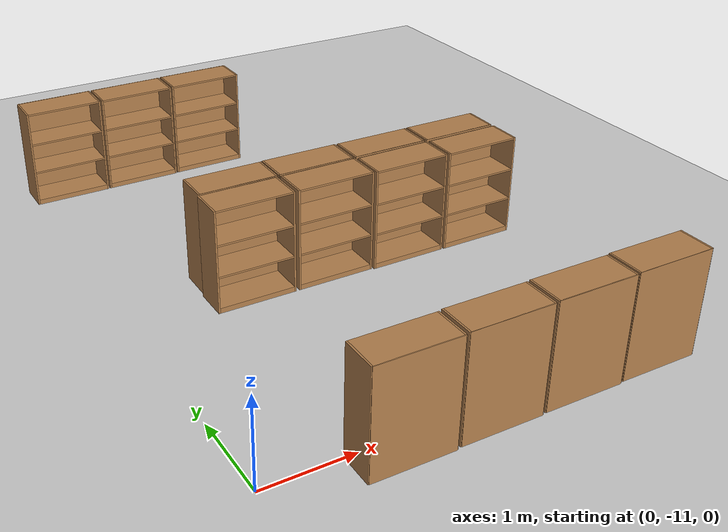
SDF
<sdf version="1.6">
 <world name="default">
  <model name="ground_plane">
   <static>1</static>
   <link name="link">
    <collision name="collision">
     <geometry><plane><normal>0 0 1</normal><size>100 100</size></plane></geometry>
     <surface>
      <contact><collide_bitmask>65535</collide_bitmask></contact>
      <friction><ode><mu>100</mu><mu2>50</mu2></ode></friction>
     </surface>
    </collision>
    <visual name="visual">
     <cast_shadows>0</cast_shadows>
     <geometry><plane><normal>0 0 1</normal><size>100 100</size></plane></geometry>
     <material>
      <script><uri>file://media/materials/scripts/gazebo.material</uri><name>Gazebo/Grey</name></script>
     </material>
    </visual>
   </link>
  </model>
  <model name="bookshelf_clone_40">
   <static>1</static>
   <link name="link">
    <inertial><mass>1</mass></inertial>
    <collision name="back">
     <pose>0 0.005 0.6 0 -0 0</pose>
     <geometry><box><size>0.9 0.01 1.2</size></box></geometry>
    </collision>
    <visual name="visual1">
     <pose>0 0.005 0.6 0 -0 0</pose>
     <geometry><box><size>0.9 0.01 1.2</size></box></geometry>
     <material>
      <script><uri>file://media/materials/scripts/gazebo.material</uri><name>Gazebo/Wood</name></script>
     </material>
    </visual>
    <collision name="left_side">
     <pose>0.45 -0.195 0.6 0 -0 0</pose>
     <geometry><box><size>0.02 0.4 1.2</size></box></geometry>
    </collision>
    <visual name="visual2">
     <pose>0.45 -0.195 0.6 0 -0 0</pose>
     <geometry><box><size>0.02 0.4 1.2</size></box></geometry>
     <material>
      <script><uri>file://media/materials/scripts/gazebo.material</uri><name>Gazebo/Wood</name></script>
     </material>
    </visual>
    <collision name="right_side">
     <pose>-0.45 -0.195 0.6 0 -0 0</pose>
     <geometry><box><size>0.02 0.4 1.2</size></box></geometry>
    </collision>
    <visual name="visual3">
     <pose>-0.45 -0.195 0.6 0 -0 0</pose>
     <geometry><box><size>0.02 0.4 1.2</size></box></geometry>
     <material>
      <script><uri>file://media/materials/scripts/gazebo.material</uri><name>Gazebo/Wood</name></script>
     </material>
    </visual>
    <collision name="bottom">
     <pose>0 -0.195 0.03 0 -0 0</pose>
     <geometry><box><size>0.88 0.4 0.06</size></box></geometry>
    </collision>
    <visual name="visual4">
     <pose>0 -0.195 0.03 0 -0 0</pose>
     <geometry><box><size>0.88 0.4 0.06</size></box></geometry>
     <material>
      <script><uri>file://media/materials/scripts/gazebo.material</uri><name>Gazebo/Wood</name></script>
     </material>
    </visual>
    <collision name="top">
     <pose>0 -0.195 1.19 0 -0 0</pose>
     <geometry><box><size>0.88 0.4 0.02</size></box></geometry>
    </collision>
    <visual name="visual5">
     <pose>0 -0.195 1.19 0 -0 0</pose>
     <geometry><box><size>0.88 0.4 0.02</size></box></geometry>
     <material>
      <script><uri>file://media/materials/scripts/gazebo.material</uri><name>Gazebo/Wood</name></script>
     </material>
    </visual>
    <collision name="low_shelf">
     <pose>0 -0.195 0.43 0 -0 0</pose>
     <geometry><box><size>0.88 0.4 0.02</size></box></geometry>
    </collision>
    <visual name="visual6">
     <pose>0 -0.195 0.43 0 -0 0</pose>
     <geometry><box><size>0.88 0.4 0.02</size></box></geometry>
     <material>
      <script><uri>file://media/materials/scripts/gazebo.material</uri><name>Gazebo/Wood</name></script>
     </material>
    </visual>
    <collision name="high_shelf">
     <pose>0 -0.195 0.8 0 -0 0</pose>
     <geometry><box><size>0.88 0.4 0.02</size></box></geometry>
    </collision>
    <visual name="visual7">
     <pose>0 -0.195 0.8 0 -0 0</pose>
     <geometry><box><size>0.88 0.4 0.02</size></box></geometry>
     <material>
      <script><uri>file://media/materials/scripts/gazebo.material</uri><name>Gazebo/Wood</name></script>
     </material>
    </visual>
   </link>
   <pose>2.29794 -4.62569 0 0 -0 0.005938</pose>
  </model>
  <model name="bookshelf_clone_41">
   <static>1</static>
   <link name="link">
    <inertial><mass>1</mass></inertial>
    <collision name="back">
     <pose>0 0.005 0.6 0 -0 0</pose>
     <geometry><box><size>0.9 0.01 1.2</size></box></geometry>
    </collision>
    <visual name="visual1">
     <pose>0 0.005 0.6 0 -0 0</pose>
     <geometry><box><size>0.9 0.01 1.2</size></box></geometry>
     <material>
      <script><uri>file://media/materials/scripts/gazebo.material</uri><name>Gazebo/Wood</name></script>
     </material>
    </visual>
    <collision name="left_side">
     <pose>0.45 -0.195 0.6 0 -0 0</pose>
     <geometry><box><size>0.02 0.4 1.2</size></box></geometry>
    </collision>
    <visual name="visual2">
     <pose>0.45 -0.195 0.6 0 -0 0</pose>
     <geometry><box><size>0.02 0.4 1.2</size></box></geometry>
     <material>
      <script><uri>file://media/materials/scripts/gazebo.material</uri><name>Gazebo/Wood</name></script>
     </material>
    </visual>
    <collision name="right_side">
     <pose>-0.45 -0.195 0.6 0 -0 0</pose>
     <geometry><box><size>0.02 0.4 1.2</size></box></geometry>
    </collision>
    <visual name="visual3">
     <pose>-0.45 -0.195 0.6 0 -0 0</pose>
     <geometry><box><size>0.02 0.4 1.2</size></box></geometry>
     <material>
      <script><uri>file://media/materials/scripts/gazebo.material</uri><name>Gazebo/Wood</name></script>
     </material>
    </visual>
    <collision name="bottom">
     <pose>0 -0.195 0.03 0 -0 0</pose>
     <geometry><box><size>0.88 0.4 0.06</size></box></geometry>
    </collision>
    <visual name="visual4">
     <pose>0 -0.195 0.03 0 -0 0</pose>
     <geometry><box><size>0.88 0.4 0.06</size></box></geometry>
     <material>
      <script><uri>file://media/materials/scripts/gazebo.material</uri><name>Gazebo/Wood</name></script>
     </material>
    </visual>
    <collision name="top">
     <pose>0 -0.195 1.19 0 -0 0</pose>
     <geometry><box><size>0.88 0.4 0.02</size></box></geometry>
    </collision>
    <visual name="visual5">
     <pose>0 -0.195 1.19 0 -0 0</pose>
     <geometry><box><size>0.88 0.4 0.02</size></box></geometry>
     <material>
      <script><uri>file://media/materials/scripts/gazebo.material</uri><name>Gazebo/Wood</name></script>
     </material>
    </visual>
    <collision name="low_shelf">
     <pose>0 -0.195 0.43 0 -0 0</pose>
     <geometry><box><size>0.88 0.4 0.02</size></box></geometry>
    </collision>
    <visual name="visual6">
     <pose>0 -0.195 0.43 0 -0 0</pose>
     <geometry><box><size>0.88 0.4 0.02</size></box></geometry>
     <material>
      <script><uri>file://media/materials/scripts/gazebo.material</uri><name>Gazebo/Wood</name></script>
     </material>
    </visual>
    <collision name="high_shelf">
     <pose>0 -0.195 0.8 0 -0 0</pose>
     <geometry><box><size>0.88 0.4 0.02</size></box></geometry>
    </collision>
    <visual name="visual7">
     <pose>0 -0.195 0.8 0 -0 0</pose>
     <geometry><box><size>0.88 0.4 0.02</size></box></geometry>
     <material>
      <script><uri>file://media/materials/scripts/gazebo.material</uri><name>Gazebo/Wood</name></script>
     </material>
    </visual>
   </link>
   <pose>1.35736 -4.64041 0 0 -0 0.005938</pose>
  </model>
  <model name="bookshelf_clone_42">
   <static>1</static>
   <link name="link">
    <inertial><mass>1</mass></inertial>
    <collision name="back">
     <pose>0 0.005 0.6 0 -0 0</pose>
     <geometry><box><size>0.9 0.01 1.2</size></box></geometry>
    </collision>
    <visual name="visual1">
     <pose>0 0.005 0.6 0 -0 0</pose>
     <geometry><box><size>0.9 0.01 1.2</size></box></geometry>
     <material>
      <script><uri>file://media/materials/scripts/gazebo.material</uri><name>Gazebo/Wood</name></script>
     </material>
    </visual>
    <collision name="left_side">
     <pose>0.45 -0.195 0.6 0 -0 0</pose>
     <geometry><box><size>0.02 0.4 1.2</size></box></geometry>
    </collision>
    <visual name="visual2">
     <pose>0.45 -0.195 0.6 0 -0 0</pose>
     <geometry><box><size>0.02 0.4 1.2</size></box></geometry>
     <material>
      <script><uri>file://media/materials/scripts/gazebo.material</uri><name>Gazebo/Wood</name></script>
     </material>
    </visual>
    <collision name="right_side">
     <pose>-0.45 -0.195 0.6 0 -0 0</pose>
     <geometry><box><size>0.02 0.4 1.2</size></box></geometry>
    </collision>
    <visual name="visual3">
     <pose>-0.45 -0.195 0.6 0 -0 0</pose>
     <geometry><box><size>0.02 0.4 1.2</size></box></geometry>
     <material>
      <script><uri>file://media/materials/scripts/gazebo.material</uri><name>Gazebo/Wood</name></script>
     </material>
    </visual>
    <collision name="bottom">
     <pose>0 -0.195 0.03 0 -0 0</pose>
     <geometry><box><size>0.88 0.4 0.06</size></box></geometry>
    </collision>
    <visual name="visual4">
     <pose>0 -0.195 0.03 0 -0 0</pose>
     <geometry><box><size>0.88 0.4 0.06</size></box></geometry>
     <material>
      <script><uri>file://media/materials/scripts/gazebo.material</uri><name>Gazebo/Wood</name></script>
     </material>
    </visual>
    <collision name="top">
     <pose>0 -0.195 1.19 0 -0 0</pose>
     <geometry><box><size>0.88 0.4 0.02</size></box></geometry>
    </collision>
    <visual name="visual5">
     <pose>0 -0.195 1.19 0 -0 0</pose>
     <geometry><box><size>0.88 0.4 0.02</size></box></geometry>
     <material>
      <script><uri>file://media/materials/scripts/gazebo.material</uri><name>Gazebo/Wood</name></script>
     </material>
    </visual>
    <collision name="low_shelf">
     <pose>0 -0.195 0.43 0 -0 0</pose>
     <geometry><box><size>0.88 0.4 0.02</size></box></geometry>
    </collision>
    <visual name="visual6">
     <pose>0 -0.195 0.43 0 -0 0</pose>
     <geometry><box><size>0.88 0.4 0.02</size></box></geometry>
     <material>
      <script><uri>file://media/materials/scripts/gazebo.material</uri><name>Gazebo/Wood</name></script>
     </material>
    </visual>
    <collision name="high_shelf">
     <pose>0 -0.195 0.8 0 -0 0</pose>
     <geometry><box><size>0.88 0.4 0.02</size></box></geometry>
    </collision>
    <visual name="visual7">
     <pose>0 -0.195 0.8 0 -0 0</pose>
     <geometry><box><size>0.88 0.4 0.02</size></box></geometry>
     <material>
      <script><uri>file://media/materials/scripts/gazebo.material</uri><name>Gazebo/Wood</name></script>
     </material>
    </visual>
   </link>
   <pose>0.41718 -4.6459 0 0 -0 0.005938</pose>
  </model>
  <model name="bookshelf_clone_52">
   <static>1</static>
   <link name="link">
    <inertial><mass>1</mass></inertial>
    <collision name="back">
     <pose>0 0.005 0.6 0 -0 0</pose>
     <geometry><box><size>0.9 0.01 1.2</size></box></geometry>
    </collision>
    <visual name="visual1">
     <pose>0 0.005 0.6 0 -0 0</pose>
     <geometry><box><size>0.9 0.01 1.2</size></box></geometry>
     <material>
      <script><uri>file://media/materials/scripts/gazebo.material</uri><name>Gazebo/Wood</name></script>
     </material>
    </visual>
    <collision name="left_side">
     <pose>0.45 -0.195 0.6 0 -0 0</pose>
     <geometry><box><size>0.02 0.4 1.2</size></box></geometry>
    </collision>
    <visual name="visual2">
     <pose>0.45 -0.195 0.6 0 -0 0</pose>
     <geometry><box><size>0.02 0.4 1.2</size></box></geometry>
     <material>
      <script><uri>file://media/materials/scripts/gazebo.material</uri><name>Gazebo/Wood</name></script>
     </material>
    </visual>
    <collision name="right_side">
     <pose>-0.45 -0.195 0.6 0 -0 0</pose>
     <geometry><box><size>0.02 0.4 1.2</size></box></geometry>
    </collision>
    <visual name="visual3">
     <pose>-0.45 -0.195 0.6 0 -0 0</pose>
     <geometry><box><size>0.02 0.4 1.2</size></box></geometry>
     <material>
      <script><uri>file://media/materials/scripts/gazebo.material</uri><name>Gazebo/Wood</name></script>
     </material>
    </visual>
    <collision name="bottom">
     <pose>0 -0.195 0.03 0 -0 0</pose>
     <geometry><box><size>0.88 0.4 0.06</size></box></geometry>
    </collision>
    <visual name="visual4">
     <pose>0 -0.195 0.03 0 -0 0</pose>
     <geometry><box><size>0.88 0.4 0.06</size></box></geometry>
     <material>
      <script><uri>file://media/materials/scripts/gazebo.material</uri><name>Gazebo/Wood</name></script>
     </material>
    </visual>
    <collision name="top">
     <pose>0 -0.195 1.19 0 -0 0</pose>
     <geometry><box><size>0.88 0.4 0.02</size></box></geometry>
    </collision>
    <visual name="visual5">
     <pose>0 -0.195 1.19 0 -0 0</pose>
     <geometry><box><size>0.88 0.4 0.02</size></box></geometry>
     <material>
      <script><uri>file://media/materials/scripts/gazebo.material</uri><name>Gazebo/Wood</name></script>
     </material>
    </visual>
    <collision name="low_shelf">
     <pose>0 -0.195 0.43 0 -0 0</pose>
     <geometry><box><size>0.88 0.4 0.02</size></box></geometry>
    </collision>
    <visual name="visual6">
     <pose>0 -0.195 0.43 0 -0 0</pose>
     <geometry><box><size>0.88 0.4 0.02</size></box></geometry>
     <material>
      <script><uri>file://media/materials/scripts/gazebo.material</uri><name>Gazebo/Wood</name></script>
     </material>
    </visual>
    <collision name="high_shelf">
     <pose>0 -0.195 0.8 0 -0 0</pose>
     <geometry><box><size>0.88 0.4 0.02</size></box></geometry>
    </collision>
    <visual name="visual7">
     <pose>0 -0.195 0.8 0 -0 0</pose>
     <geometry><box><size>0.88 0.4 0.02</size></box></geometry>
     <material>
      <script><uri>file://media/materials/scripts/gazebo.material</uri><name>Gazebo/Wood</name></script>
     </material>
    </visual>
   </link>
   <pose>1.34763 -7.98528 0 0 -0 3.13561</pose>
  </model>
  <model name="bookshelf_clone_53">
   <static>1</static>
   <link name="link">
    <inertial><mass>1</mass></inertial>
    <collision name="back">
     <pose>0 0.005 0.6 0 -0 0</pose>
     <geometry><box><size>0.9 0.01 1.2</size></box></geometry>
    </collision>
    <visual name="visual1">
     <pose>0 0.005 0.6 0 -0 0</pose>
     <geometry><box><size>0.9 0.01 1.2</size></box></geometry>
     <material>
      <script><uri>file://media/materials/scripts/gazebo.material</uri><name>Gazebo/Wood</name></script>
     </material>
    </visual>
    <collision name="left_side">
     <pose>0.45 -0.195 0.6 0 -0 0</pose>
     <geometry><box><size>0.02 0.4 1.2</size></box></geometry>
    </collision>
    <visual name="visual2">
     <pose>0.45 -0.195 0.6 0 -0 0</pose>
     <geometry><box><size>0.02 0.4 1.2</size></box></geometry>
     <material>
      <script><uri>file://media/materials/scripts/gazebo.material</uri><name>Gazebo/Wood</name></script>
     </material>
    </visual>
    <collision name="right_side">
     <pose>-0.45 -0.195 0.6 0 -0 0</pose>
     <geometry><box><size>0.02 0.4 1.2</size></box></geometry>
    </collision>
    <visual name="visual3">
     <pose>-0.45 -0.195 0.6 0 -0 0</pose>
     <geometry><box><size>0.02 0.4 1.2</size></box></geometry>
     <material>
      <script><uri>file://media/materials/scripts/gazebo.material</uri><name>Gazebo/Wood</name></script>
     </material>
    </visual>
    <collision name="bottom">
     <pose>0 -0.195 0.03 0 -0 0</pose>
     <geometry><box><size>0.88 0.4 0.06</size></box></geometry>
    </collision>
    <visual name="visual4">
     <pose>0 -0.195 0.03 0 -0 0</pose>
     <geometry><box><size>0.88 0.4 0.06</size></box></geometry>
     <material>
      <script><uri>file://media/materials/scripts/gazebo.material</uri><name>Gazebo/Wood</name></script>
     </material>
    </visual>
    <collision name="top">
     <pose>0 -0.195 1.19 0 -0 0</pose>
     <geometry><box><size>0.88 0.4 0.02</size></box></geometry>
    </collision>
    <visual name="visual5">
     <pose>0 -0.195 1.19 0 -0 0</pose>
     <geometry><box><size>0.88 0.4 0.02</size></box></geometry>
     <material>
      <script><uri>file://media/materials/scripts/gazebo.material</uri><name>Gazebo/Wood</name></script>
     </material>
    </visual>
    <collision name="low_shelf">
     <pose>0 -0.195 0.43 0 -0 0</pose>
     <geometry><box><size>0.88 0.4 0.02</size></box></geometry>
    </collision>
    <visual name="visual6">
     <pose>0 -0.195 0.43 0 -0 0</pose>
     <geometry><box><size>0.88 0.4 0.02</size></box></geometry>
     <material>
      <script><uri>file://media/materials/scripts/gazebo.material</uri><name>Gazebo/Wood</name></script>
     </material>
    </visual>
    <collision name="high_shelf">
     <pose>0 -0.195 0.8 0 -0 0</pose>
     <geometry><box><size>0.88 0.4 0.02</size></box></geometry>
    </collision>
    <visual name="visual7">
     <pose>0 -0.195 0.8 0 -0 0</pose>
     <geometry><box><size>0.88 0.4 0.02</size></box></geometry>
     <material>
      <script><uri>file://media/materials/scripts/gazebo.material</uri><name>Gazebo/Wood</name></script>
     </material>
    </visual>
   </link>
   <pose>2.28143 -7.98029 0 0 -0 3.13561</pose>
  </model>
  <model name="bookshelf_clone_54">
   <static>1</static>
   <link name="link">
    <inertial><mass>1</mass></inertial>
    <collision name="back">
     <pose>0 0.005 0.6 0 -0 0</pose>
     <geometry><box><size>0.9 0.01 1.2</size></box></geometry>
    </collision>
    <visual name="visual1">
     <pose>0 0.005 0.6 0 -0 0</pose>
     <geometry><box><size>0.9 0.01 1.2</size></box></geometry>
     <material>
      <script><uri>file://media/materials/scripts/gazebo.material</uri><name>Gazebo/Wood</name></script>
     </material>
    </visual>
    <collision name="left_side">
     <pose>0.45 -0.195 0.6 0 -0 0</pose>
     <geometry><box><size>0.02 0.4 1.2</size></box></geometry>
    </collision>
    <visual name="visual2">
     <pose>0.45 -0.195 0.6 0 -0 0</pose>
     <geometry><box><size>0.02 0.4 1.2</size></box></geometry>
     <material>
      <script><uri>file://media/materials/scripts/gazebo.material</uri><name>Gazebo/Wood</name></script>
     </material>
    </visual>
    <collision name="right_side">
     <pose>-0.45 -0.195 0.6 0 -0 0</pose>
     <geometry><box><size>0.02 0.4 1.2</size></box></geometry>
    </collision>
    <visual name="visual3">
     <pose>-0.45 -0.195 0.6 0 -0 0</pose>
     <geometry><box><size>0.02 0.4 1.2</size></box></geometry>
     <material>
      <script><uri>file://media/materials/scripts/gazebo.material</uri><name>Gazebo/Wood</name></script>
     </material>
    </visual>
    <collision name="bottom">
     <pose>0 -0.195 0.03 0 -0 0</pose>
     <geometry><box><size>0.88 0.4 0.06</size></box></geometry>
    </collision>
    <visual name="visual4">
     <pose>0 -0.195 0.03 0 -0 0</pose>
     <geometry><box><size>0.88 0.4 0.06</size></box></geometry>
     <material>
      <script><uri>file://media/materials/scripts/gazebo.material</uri><name>Gazebo/Wood</name></script>
     </material>
    </visual>
    <collision name="top">
     <pose>0 -0.195 1.19 0 -0 0</pose>
     <geometry><box><size>0.88 0.4 0.02</size></box></geometry>
    </collision>
    <visual name="visual5">
     <pose>0 -0.195 1.19 0 -0 0</pose>
     <geometry><box><size>0.88 0.4 0.02</size></box></geometry>
     <material>
      <script><uri>file://media/materials/scripts/gazebo.material</uri><name>Gazebo/Wood</name></script>
     </material>
    </visual>
    <collision name="low_shelf">
     <pose>0 -0.195 0.43 0 -0 0</pose>
     <geometry><box><size>0.88 0.4 0.02</size></box></geometry>
    </collision>
    <visual name="visual6">
     <pose>0 -0.195 0.43 0 -0 0</pose>
     <geometry><box><size>0.88 0.4 0.02</size></box></geometry>
     <material>
      <script><uri>file://media/materials/scripts/gazebo.material</uri><name>Gazebo/Wood</name></script>
     </material>
    </visual>
    <collision name="high_shelf">
     <pose>0 -0.195 0.8 0 -0 0</pose>
     <geometry><box><size>0.88 0.4 0.02</size></box></geometry>
    </collision>
    <visual name="visual7">
     <pose>0 -0.195 0.8 0 -0 0</pose>
     <geometry><box><size>0.88 0.4 0.02</size></box></geometry>
     <material>
      <script><uri>file://media/materials/scripts/gazebo.material</uri><name>Gazebo/Wood</name></script>
     </material>
    </visual>
   </link>
   <pose>3.22461 -7.98992 0 0 -0 3.13561</pose>
  </model>
  <model name="bookshelf_clone_55">
   <static>1</static>
   <link name="link">
    <inertial><mass>1</mass></inertial>
    <collision name="back">
     <pose>0 0.005 0.6 0 -0 0</pose>
     <geometry><box><size>0.9 0.01 1.2</size></box></geometry>
    </collision>
    <visual name="visual1">
     <pose>0 0.005 0.6 0 -0 0</pose>
     <geometry><box><size>0.9 0.01 1.2</size></box></geometry>
     <material>
      <script><uri>file://media/materials/scripts/gazebo.material</uri><name>Gazebo/Wood</name></script>
     </material>
    </visual>
    <collision name="left_side">
     <pose>0.45 -0.195 0.6 0 -0 0</pose>
     <geometry><box><size>0.02 0.4 1.2</size></box></geometry>
    </collision>
    <visual name="visual2">
     <pose>0.45 -0.195 0.6 0 -0 0</pose>
     <geometry><box><size>0.02 0.4 1.2</size></box></geometry>
     <material>
      <script><uri>file://media/materials/scripts/gazebo.material</uri><name>Gazebo/Wood</name></script>
     </material>
    </visual>
    <collision name="right_side">
     <pose>-0.45 -0.195 0.6 0 -0 0</pose>
     <geometry><box><size>0.02 0.4 1.2</size></box></geometry>
    </collision>
    <visual name="visual3">
     <pose>-0.45 -0.195 0.6 0 -0 0</pose>
     <geometry><box><size>0.02 0.4 1.2</size></box></geometry>
     <material>
      <script><uri>file://media/materials/scripts/gazebo.material</uri><name>Gazebo/Wood</name></script>
     </material>
    </visual>
    <collision name="bottom">
     <pose>0 -0.195 0.03 0 -0 0</pose>
     <geometry><box><size>0.88 0.4 0.06</size></box></geometry>
    </collision>
    <visual name="visual4">
     <pose>0 -0.195 0.03 0 -0 0</pose>
     <geometry><box><size>0.88 0.4 0.06</size></box></geometry>
     <material>
      <script><uri>file://media/materials/scripts/gazebo.material</uri><name>Gazebo/Wood</name></script>
     </material>
    </visual>
    <collision name="top">
     <pose>0 -0.195 1.19 0 -0 0</pose>
     <geometry><box><size>0.88 0.4 0.02</size></box></geometry>
    </collision>
    <visual name="visual5">
     <pose>0 -0.195 1.19 0 -0 0</pose>
     <geometry><box><size>0.88 0.4 0.02</size></box></geometry>
     <material>
      <script><uri>file://media/materials/scripts/gazebo.material</uri><name>Gazebo/Wood</name></script>
     </material>
    </visual>
    <collision name="low_shelf">
     <pose>0 -0.195 0.43 0 -0 0</pose>
     <geometry><box><size>0.88 0.4 0.02</size></box></geometry>
    </collision>
    <visual name="visual6">
     <pose>0 -0.195 0.43 0 -0 0</pose>
     <geometry><box><size>0.88 0.4 0.02</size></box></geometry>
     <material>
      <script><uri>file://media/materials/scripts/gazebo.material</uri><name>Gazebo/Wood</name></script>
     </material>
    </visual>
    <collision name="high_shelf">
     <pose>0 -0.195 0.8 0 -0 0</pose>
     <geometry><box><size>0.88 0.4 0.02</size></box></geometry>
    </collision>
    <visual name="visual7">
     <pose>0 -0.195 0.8 0 -0 0</pose>
     <geometry><box><size>0.88 0.4 0.02</size></box></geometry>
     <material>
      <script><uri>file://media/materials/scripts/gazebo.material</uri><name>Gazebo/Wood</name></script>
     </material>
    </visual>
   </link>
   <pose>4.1665 -7.98999 0 0 -0 3.13561</pose>
  </model>
  <model name="bookshelf_clone_58">
   <static>1</static>
   <link name="link">
    <inertial><mass>1</mass></inertial>
    <collision name="back">
     <pose>0 0.005 0.6 0 -0 0</pose>
     <geometry><box><size>0.9 0.01 1.2</size></box></geometry>
    </collision>
    <visual name="visual1">
     <pose>0 0.005 0.6 0 -0 0</pose>
     <geometry><box><size>0.9 0.01 1.2</size></box></geometry>
     <material>
      <script><uri>file://media/materials/scripts/gazebo.material</uri><name>Gazebo/Wood</name></script>
     </material>
    </visual>
    <collision name="left_side">
     <pose>0.45 -0.195 0.6 0 -0 0</pose>
     <geometry><box><size>0.02 0.4 1.2</size></box></geometry>
    </collision>
    <visual name="visual2">
     <pose>0.45 -0.195 0.6 0 -0 0</pose>
     <geometry><box><size>0.02 0.4 1.2</size></box></geometry>
     <material>
      <script><uri>file://media/materials/scripts/gazebo.material</uri><name>Gazebo/Wood</name></script>
     </material>
    </visual>
    <collision name="right_side">
     <pose>-0.45 -0.195 0.6 0 -0 0</pose>
     <geometry><box><size>0.02 0.4 1.2</size></box></geometry>
    </collision>
    <visual name="visual3">
     <pose>-0.45 -0.195 0.6 0 -0 0</pose>
     <geometry><box><size>0.02 0.4 1.2</size></box></geometry>
     <material>
      <script><uri>file://media/materials/scripts/gazebo.material</uri><name>Gazebo/Wood</name></script>
     </material>
    </visual>
    <collision name="bottom">
     <pose>0 -0.195 0.03 0 -0 0</pose>
     <geometry><box><size>0.88 0.4 0.06</size></box></geometry>
    </collision>
    <visual name="visual4">
     <pose>0 -0.195 0.03 0 -0 0</pose>
     <geometry><box><size>0.88 0.4 0.06</size></box></geometry>
     <material>
      <script><uri>file://media/materials/scripts/gazebo.material</uri><name>Gazebo/Wood</name></script>
     </material>
    </visual>
    <collision name="top">
     <pose>0 -0.195 1.19 0 -0 0</pose>
     <geometry><box><size>0.88 0.4 0.02</size></box></geometry>
    </collision>
    <visual name="visual5">
     <pose>0 -0.195 1.19 0 -0 0</pose>
     <geometry><box><size>0.88 0.4 0.02</size></box></geometry>
     <material>
      <script><uri>file://media/materials/scripts/gazebo.material</uri><name>Gazebo/Wood</name></script>
     </material>
    </visual>
    <collision name="low_shelf">
     <pose>0 -0.195 0.43 0 -0 0</pose>
     <geometry><box><size>0.88 0.4 0.02</size></box></geometry>
    </collision>
    <visual name="visual6">
     <pose>0 -0.195 0.43 0 -0 0</pose>
     <geometry><box><size>0.88 0.4 0.02</size></box></geometry>
     <material>
      <script><uri>file://media/materials/scripts/gazebo.material</uri><name>Gazebo/Wood</name></script>
     </material>
    </visual>
    <collision name="high_shelf">
     <pose>0 -0.195 0.8 0 -0 0</pose>
     <geometry><box><size>0.88 0.4 0.02</size></box></geometry>
    </collision>
    <visual name="visual7">
     <pose>0 -0.195 0.8 0 -0 0</pose>
     <geometry><box><size>0.88 0.4 0.02</size></box></geometry>
     <material>
      <script><uri>file://media/materials/scripts/gazebo.material</uri><name>Gazebo/Wood</name></script>
     </material>
    </visual>
   </link>
   <pose>1.30898 -11.3858 0 0 -0 3.13561</pose>
  </model>
  <model name="bookshelf_clone_59">
   <static>1</static>
   <link name="link">
    <inertial><mass>1</mass></inertial>
    <collision name="back">
     <pose>0 0.005 0.6 0 -0 0</pose>
     <geometry><box><size>0.9 0.01 1.2</size></box></geometry>
    </collision>
    <visual name="visual1">
     <pose>0 0.005 0.6 0 -0 0</pose>
     <geometry><box><size>0.9 0.01 1.2</size></box></geometry>
     <material>
      <script><uri>file://media/materials/scripts/gazebo.material</uri><name>Gazebo/Wood</name></script>
     </material>
    </visual>
    <collision name="left_side">
     <pose>0.45 -0.195 0.6 0 -0 0</pose>
     <geometry><box><size>0.02 0.4 1.2</size></box></geometry>
    </collision>
    <visual name="visual2">
     <pose>0.45 -0.195 0.6 0 -0 0</pose>
     <geometry><box><size>0.02 0.4 1.2</size></box></geometry>
     <material>
      <script><uri>file://media/materials/scripts/gazebo.material</uri><name>Gazebo/Wood</name></script>
     </material>
    </visual>
    <collision name="right_side">
     <pose>-0.45 -0.195 0.6 0 -0 0</pose>
     <geometry><box><size>0.02 0.4 1.2</size></box></geometry>
    </collision>
    <visual name="visual3">
     <pose>-0.45 -0.195 0.6 0 -0 0</pose>
     <geometry><box><size>0.02 0.4 1.2</size></box></geometry>
     <material>
      <script><uri>file://media/materials/scripts/gazebo.material</uri><name>Gazebo/Wood</name></script>
     </material>
    </visual>
    <collision name="bottom">
     <pose>0 -0.195 0.03 0 -0 0</pose>
     <geometry><box><size>0.88 0.4 0.06</size></box></geometry>
    </collision>
    <visual name="visual4">
     <pose>0 -0.195 0.03 0 -0 0</pose>
     <geometry><box><size>0.88 0.4 0.06</size></box></geometry>
     <material>
      <script><uri>file://media/materials/scripts/gazebo.material</uri><name>Gazebo/Wood</name></script>
     </material>
    </visual>
    <collision name="top">
     <pose>0 -0.195 1.19 0 -0 0</pose>
     <geometry><box><size>0.88 0.4 0.02</size></box></geometry>
    </collision>
    <visual name="visual5">
     <pose>0 -0.195 1.19 0 -0 0</pose>
     <geometry><box><size>0.88 0.4 0.02</size></box></geometry>
     <material>
      <script><uri>file://media/materials/scripts/gazebo.material</uri><name>Gazebo/Wood</name></script>
     </material>
    </visual>
    <collision name="low_shelf">
     <pose>0 -0.195 0.43 0 -0 0</pose>
     <geometry><box><size>0.88 0.4 0.02</size></box></geometry>
    </collision>
    <visual name="visual6">
     <pose>0 -0.195 0.43 0 -0 0</pose>
     <geometry><box><size>0.88 0.4 0.02</size></box></geometry>
     <material>
      <script><uri>file://media/materials/scripts/gazebo.material</uri><name>Gazebo/Wood</name></script>
     </material>
    </visual>
    <collision name="high_shelf">
     <pose>0 -0.195 0.8 0 -0 0</pose>
     <geometry><box><size>0.88 0.4 0.02</size></box></geometry>
    </collision>
    <visual name="visual7">
     <pose>0 -0.195 0.8 0 -0 0</pose>
     <geometry><box><size>0.88 0.4 0.02</size></box></geometry>
     <material>
      <script><uri>file://media/materials/scripts/gazebo.material</uri><name>Gazebo/Wood</name></script>
     </material>
    </visual>
   </link>
   <pose>2.26189 -11.3761 0 0 -0 3.13561</pose>
  </model>
  <model name="bookshelf_clone_60">
   <static>1</static>
   <link name="link">
    <inertial><mass>1</mass></inertial>
    <collision name="back">
     <pose>0 0.005 0.6 0 -0 0</pose>
     <geometry><box><size>0.9 0.01 1.2</size></box></geometry>
    </collision>
    <visual name="visual1">
     <pose>0 0.005 0.6 0 -0 0</pose>
     <geometry><box><size>0.9 0.01 1.2</size></box></geometry>
     <material>
      <script><uri>file://media/materials/scripts/gazebo.material</uri><name>Gazebo/Wood</name></script>
     </material>
    </visual>
    <collision name="left_side">
     <pose>0.45 -0.195 0.6 0 -0 0</pose>
     <geometry><box><size>0.02 0.4 1.2</size></box></geometry>
    </collision>
    <visual name="visual2">
     <pose>0.45 -0.195 0.6 0 -0 0</pose>
     <geometry><box><size>0.02 0.4 1.2</size></box></geometry>
     <material>
      <script><uri>file://media/materials/scripts/gazebo.material</uri><name>Gazebo/Wood</name></script>
     </material>
    </visual>
    <collision name="right_side">
     <pose>-0.45 -0.195 0.6 0 -0 0</pose>
     <geometry><box><size>0.02 0.4 1.2</size></box></geometry>
    </collision>
    <visual name="visual3">
     <pose>-0.45 -0.195 0.6 0 -0 0</pose>
     <geometry><box><size>0.02 0.4 1.2</size></box></geometry>
     <material>
      <script><uri>file://media/materials/scripts/gazebo.material</uri><name>Gazebo/Wood</name></script>
     </material>
    </visual>
    <collision name="bottom">
     <pose>0 -0.195 0.03 0 -0 0</pose>
     <geometry><box><size>0.88 0.4 0.06</size></box></geometry>
    </collision>
    <visual name="visual4">
     <pose>0 -0.195 0.03 0 -0 0</pose>
     <geometry><box><size>0.88 0.4 0.06</size></box></geometry>
     <material>
      <script><uri>file://media/materials/scripts/gazebo.material</uri><name>Gazebo/Wood</name></script>
     </material>
    </visual>
    <collision name="top">
     <pose>0 -0.195 1.19 0 -0 0</pose>
     <geometry><box><size>0.88 0.4 0.02</size></box></geometry>
    </collision>
    <visual name="visual5">
     <pose>0 -0.195 1.19 0 -0 0</pose>
     <geometry><box><size>0.88 0.4 0.02</size></box></geometry>
     <material>
      <script><uri>file://media/materials/scripts/gazebo.material</uri><name>Gazebo/Wood</name></script>
     </material>
    </visual>
    <collision name="low_shelf">
     <pose>0 -0.195 0.43 0 -0 0</pose>
     <geometry><box><size>0.88 0.4 0.02</size></box></geometry>
    </collision>
    <visual name="visual6">
     <pose>0 -0.195 0.43 0 -0 0</pose>
     <geometry><box><size>0.88 0.4 0.02</size></box></geometry>
     <material>
      <script><uri>file://media/materials/scripts/gazebo.material</uri><name>Gazebo/Wood</name></script>
     </material>
    </visual>
    <collision name="high_shelf">
     <pose>0 -0.195 0.8 0 -0 0</pose>
     <geometry><box><size>0.88 0.4 0.02</size></box></geometry>
    </collision>
    <visual name="visual7">
     <pose>0 -0.195 0.8 0 -0 0</pose>
     <geometry><box><size>0.88 0.4 0.02</size></box></geometry>
     <material>
      <script><uri>file://media/materials/scripts/gazebo.material</uri><name>Gazebo/Wood</name></script>
     </material>
    </visual>
   </link>
   <pose>3.21199 -11.3706 0 0 -0 3.13561</pose>
  </model>
  <model name="bookshelf_clone_61">
   <static>1</static>
   <link name="link">
    <inertial><mass>1</mass></inertial>
    <collision name="back">
     <pose>0 0.005 0.6 0 -0 0</pose>
     <geometry><box><size>0.9 0.01 1.2</size></box></geometry>
    </collision>
    <visual name="visual1">
     <pose>0 0.005 0.6 0 -0 0</pose>
     <geometry><box><size>0.9 0.01 1.2</size></box></geometry>
     <material>
      <script><uri>file://media/materials/scripts/gazebo.material</uri><name>Gazebo/Wood</name></script>
     </material>
    </visual>
    <collision name="left_side">
     <pose>0.45 -0.195 0.6 0 -0 0</pose>
     <geometry><box><size>0.02 0.4 1.2</size></box></geometry>
    </collision>
    <visual name="visual2">
     <pose>0.45 -0.195 0.6 0 -0 0</pose>
     <geometry><box><size>0.02 0.4 1.2</size></box></geometry>
     <material>
      <script><uri>file://media/materials/scripts/gazebo.material</uri><name>Gazebo/Wood</name></script>
     </material>
    </visual>
    <collision name="right_side">
     <pose>-0.45 -0.195 0.6 0 -0 0</pose>
     <geometry><box><size>0.02 0.4 1.2</size></box></geometry>
    </collision>
    <visual name="visual3">
     <pose>-0.45 -0.195 0.6 0 -0 0</pose>
     <geometry><box><size>0.02 0.4 1.2</size></box></geometry>
     <material>
      <script><uri>file://media/materials/scripts/gazebo.material</uri><name>Gazebo/Wood</name></script>
     </material>
    </visual>
    <collision name="bottom">
     <pose>0 -0.195 0.03 0 -0 0</pose>
     <geometry><box><size>0.88 0.4 0.06</size></box></geometry>
    </collision>
    <visual name="visual4">
     <pose>0 -0.195 0.03 0 -0 0</pose>
     <geometry><box><size>0.88 0.4 0.06</size></box></geometry>
     <material>
      <script><uri>file://media/materials/scripts/gazebo.material</uri><name>Gazebo/Wood</name></script>
     </material>
    </visual>
    <collision name="top">
     <pose>0 -0.195 1.19 0 -0 0</pose>
     <geometry><box><size>0.88 0.4 0.02</size></box></geometry>
    </collision>
    <visual name="visual5">
     <pose>0 -0.195 1.19 0 -0 0</pose>
     <geometry><box><size>0.88 0.4 0.02</size></box></geometry>
     <material>
      <script><uri>file://media/materials/scripts/gazebo.material</uri><name>Gazebo/Wood</name></script>
     </material>
    </visual>
    <collision name="low_shelf">
     <pose>0 -0.195 0.43 0 -0 0</pose>
     <geometry><box><size>0.88 0.4 0.02</size></box></geometry>
    </collision>
    <visual name="visual6">
     <pose>0 -0.195 0.43 0 -0 0</pose>
     <geometry><box><size>0.88 0.4 0.02</size></box></geometry>
     <material>
      <script><uri>file://media/materials/scripts/gazebo.material</uri><name>Gazebo/Wood</name></script>
     </material>
    </visual>
    <collision name="high_shelf">
     <pose>0 -0.195 0.8 0 -0 0</pose>
     <geometry><box><size>0.88 0.4 0.02</size></box></geometry>
    </collision>
    <visual name="visual7">
     <pose>0 -0.195 0.8 0 -0 0</pose>
     <geometry><box><size>0.88 0.4 0.02</size></box></geometry>
     <material>
      <script><uri>file://media/materials/scripts/gazebo.material</uri><name>Gazebo/Wood</name></script>
     </material>
    </visual>
   </link>
   <pose>4.15472 -11.3616 0 0 -0 3.13561</pose>
  </model>
  <model name="bookshelf_clone_62">
   <static>1</static>
   <link name="link">
    <inertial><mass>1</mass></inertial>
    <collision name="back">
     <pose>0 0.005 0.6 0 -0 0</pose>
     <geometry><box><size>0.9 0.01 1.2</size></box></geometry>
    </collision>
    <visual name="visual1">
     <pose>0 0.005 0.6 0 -0 0</pose>
     <geometry><box><size>0.9 0.01 1.2</size></box></geometry>
     <material>
      <script><uri>file://media/materials/scripts/gazebo.material</uri><name>Gazebo/Wood</name></script>
     </material>
    </visual>
    <collision name="left_side">
     <pose>0.45 -0.195 0.6 0 -0 0</pose>
     <geometry><box><size>0.02 0.4 1.2</size></box></geometry>
    </collision>
    <visual name="visual2">
     <pose>0.45 -0.195 0.6 0 -0 0</pose>
     <geometry><box><size>0.02 0.4 1.2</size></box></geometry>
     <material>
      <script><uri>file://media/materials/scripts/gazebo.material</uri><name>Gazebo/Wood</name></script>
     </material>
    </visual>
    <collision name="right_side">
     <pose>-0.45 -0.195 0.6 0 -0 0</pose>
     <geometry><box><size>0.02 0.4 1.2</size></box></geometry>
    </collision>
    <visual name="visual3">
     <pose>-0.45 -0.195 0.6 0 -0 0</pose>
     <geometry><box><size>0.02 0.4 1.2</size></box></geometry>
     <material>
      <script><uri>file://media/materials/scripts/gazebo.material</uri><name>Gazebo/Wood</name></script>
     </material>
    </visual>
    <collision name="bottom">
     <pose>0 -0.195 0.03 0 -0 0</pose>
     <geometry><box><size>0.88 0.4 0.06</size></box></geometry>
    </collision>
    <visual name="visual4">
     <pose>0 -0.195 0.03 0 -0 0</pose>
     <geometry><box><size>0.88 0.4 0.06</size></box></geometry>
     <material>
      <script><uri>file://media/materials/scripts/gazebo.material</uri><name>Gazebo/Wood</name></script>
     </material>
    </visual>
    <collision name="top">
     <pose>0 -0.195 1.19 0 -0 0</pose>
     <geometry><box><size>0.88 0.4 0.02</size></box></geometry>
    </collision>
    <visual name="visual5">
     <pose>0 -0.195 1.19 0 -0 0</pose>
     <geometry><box><size>0.88 0.4 0.02</size></box></geometry>
     <material>
      <script><uri>file://media/materials/scripts/gazebo.material</uri><name>Gazebo/Wood</name></script>
     </material>
    </visual>
    <collision name="low_shelf">
     <pose>0 -0.195 0.43 0 -0 0</pose>
     <geometry><box><size>0.88 0.4 0.02</size></box></geometry>
    </collision>
    <visual name="visual6">
     <pose>0 -0.195 0.43 0 -0 0</pose>
     <geometry><box><size>0.88 0.4 0.02</size></box></geometry>
     <material>
      <script><uri>file://media/materials/scripts/gazebo.material</uri><name>Gazebo/Wood</name></script>
     </material>
    </visual>
    <collision name="high_shelf">
     <pose>0 -0.195 0.8 0 -0 0</pose>
     <geometry><box><size>0.88 0.4 0.02</size></box></geometry>
    </collision>
    <visual name="visual7">
     <pose>0 -0.195 0.8 0 -0 0</pose>
     <geometry><box><size>0.88 0.4 0.02</size></box></geometry>
     <material>
      <script><uri>file://media/materials/scripts/gazebo.material</uri><name>Gazebo/Wood</name></script>
     </material>
    </visual>
   </link>
   <pose>4.17321 -8.04699 0 0 -0 0.00089</pose>
  </model>
  <model name="bookshelf_clone_63">
   <static>1</static>
   <link name="link">
    <inertial><mass>1</mass></inertial>
    <collision name="back">
     <pose>0 0.005 0.6 0 -0 0</pose>
     <geometry><box><size>0.9 0.01 1.2</size></box></geometry>
    </collision>
    <visual name="visual1">
     <pose>0 0.005 0.6 0 -0 0</pose>
     <geometry><box><size>0.9 0.01 1.2</size></box></geometry>
     <material>
      <script><uri>file://media/materials/scripts/gazebo.material</uri><name>Gazebo/Wood</name></script>
     </material>
    </visual>
    <collision name="left_side">
     <pose>0.45 -0.195 0.6 0 -0 0</pose>
     <geometry><box><size>0.02 0.4 1.2</size></box></geometry>
    </collision>
    <visual name="visual2">
     <pose>0.45 -0.195 0.6 0 -0 0</pose>
     <geometry><box><size>0.02 0.4 1.2</size></box></geometry>
     <material>
      <script><uri>file://media/materials/scripts/gazebo.material</uri><name>Gazebo/Wood</name></script>
     </material>
    </visual>
    <collision name="right_side">
     <pose>-0.45 -0.195 0.6 0 -0 0</pose>
     <geometry><box><size>0.02 0.4 1.2</size></box></geometry>
    </collision>
    <visual name="visual3">
     <pose>-0.45 -0.195 0.6 0 -0 0</pose>
     <geometry><box><size>0.02 0.4 1.2</size></box></geometry>
     <material>
      <script><uri>file://media/materials/scripts/gazebo.material</uri><name>Gazebo/Wood</name></script>
     </material>
    </visual>
    <collision name="bottom">
     <pose>0 -0.195 0.03 0 -0 0</pose>
     <geometry><box><size>0.88 0.4 0.06</size></box></geometry>
    </collision>
    <visual name="visual4">
     <pose>0 -0.195 0.03 0 -0 0</pose>
     <geometry><box><size>0.88 0.4 0.06</size></box></geometry>
     <material>
      <script><uri>file://media/materials/scripts/gazebo.material</uri><name>Gazebo/Wood</name></script>
     </material>
    </visual>
    <collision name="top">
     <pose>0 -0.195 1.19 0 -0 0</pose>
     <geometry><box><size>0.88 0.4 0.02</size></box></geometry>
    </collision>
    <visual name="visual5">
     <pose>0 -0.195 1.19 0 -0 0</pose>
     <geometry><box><size>0.88 0.4 0.02</size></box></geometry>
     <material>
      <script><uri>file://media/materials/scripts/gazebo.material</uri><name>Gazebo/Wood</name></script>
     </material>
    </visual>
    <collision name="low_shelf">
     <pose>0 -0.195 0.43 0 -0 0</pose>
     <geometry><box><size>0.88 0.4 0.02</size></box></geometry>
    </collision>
    <visual name="visual6">
     <pose>0 -0.195 0.43 0 -0 0</pose>
     <geometry><box><size>0.88 0.4 0.02</size></box></geometry>
     <material>
      <script><uri>file://media/materials/scripts/gazebo.material</uri><name>Gazebo/Wood</name></script>
     </material>
    </visual>
    <collision name="high_shelf">
     <pose>0 -0.195 0.8 0 -0 0</pose>
     <geometry><box><size>0.88 0.4 0.02</size></box></geometry>
    </collision>
    <visual name="visual7">
     <pose>0 -0.195 0.8 0 -0 0</pose>
     <geometry><box><size>0.88 0.4 0.02</size></box></geometry>
     <material>
      <script><uri>file://media/materials/scripts/gazebo.material</uri><name>Gazebo/Wood</name></script>
     </material>
    </visual>
   </link>
   <pose>3.22796 -8.04217 0 0 -0 0.00089</pose>
  </model>
  <model name="bookshelf_clone_64">
   <static>1</static>
   <link name="link">
    <inertial><mass>1</mass></inertial>
    <collision name="back">
     <pose>0 0.005 0.6 0 -0 0</pose>
     <geometry><box><size>0.9 0.01 1.2</size></box></geometry>
    </collision>
    <visual name="visual1">
     <pose>0 0.005 0.6 0 -0 0</pose>
     <geometry><box><size>0.9 0.01 1.2</size></box></geometry>
     <material>
      <script><uri>file://media/materials/scripts/gazebo.material</uri><name>Gazebo/Wood</name></script>
     </material>
    </visual>
    <collision name="left_side">
     <pose>0.45 -0.195 0.6 0 -0 0</pose>
     <geometry><box><size>0.02 0.4 1.2</size></box></geometry>
    </collision>
    <visual name="visual2">
     <pose>0.45 -0.195 0.6 0 -0 0</pose>
     <geometry><box><size>0.02 0.4 1.2</size></box></geometry>
     <material>
      <script><uri>file://media/materials/scripts/gazebo.material</uri><name>Gazebo/Wood</name></script>
     </material>
    </visual>
    <collision name="right_side">
     <pose>-0.45 -0.195 0.6 0 -0 0</pose>
     <geometry><box><size>0.02 0.4 1.2</size></box></geometry>
    </collision>
    <visual name="visual3">
     <pose>-0.45 -0.195 0.6 0 -0 0</pose>
     <geometry><box><size>0.02 0.4 1.2</size></box></geometry>
     <material>
      <script><uri>file://media/materials/scripts/gazebo.material</uri><name>Gazebo/Wood</name></script>
     </material>
    </visual>
    <collision name="bottom">
     <pose>0 -0.195 0.03 0 -0 0</pose>
     <geometry><box><size>0.88 0.4 0.06</size></box></geometry>
    </collision>
    <visual name="visual4">
     <pose>0 -0.195 0.03 0 -0 0</pose>
     <geometry><box><size>0.88 0.4 0.06</size></box></geometry>
     <material>
      <script><uri>file://media/materials/scripts/gazebo.material</uri><name>Gazebo/Wood</name></script>
     </material>
    </visual>
    <collision name="top">
     <pose>0 -0.195 1.19 0 -0 0</pose>
     <geometry><box><size>0.88 0.4 0.02</size></box></geometry>
    </collision>
    <visual name="visual5">
     <pose>0 -0.195 1.19 0 -0 0</pose>
     <geometry><box><size>0.88 0.4 0.02</size></box></geometry>
     <material>
      <script><uri>file://media/materials/scripts/gazebo.material</uri><name>Gazebo/Wood</name></script>
     </material>
    </visual>
    <collision name="low_shelf">
     <pose>0 -0.195 0.43 0 -0 0</pose>
     <geometry><box><size>0.88 0.4 0.02</size></box></geometry>
    </collision>
    <visual name="visual6">
     <pose>0 -0.195 0.43 0 -0 0</pose>
     <geometry><box><size>0.88 0.4 0.02</size></box></geometry>
     <material>
      <script><uri>file://media/materials/scripts/gazebo.material</uri><name>Gazebo/Wood</name></script>
     </material>
    </visual>
    <collision name="high_shelf">
     <pose>0 -0.195 0.8 0 -0 0</pose>
     <geometry><box><size>0.88 0.4 0.02</size></box></geometry>
    </collision>
    <visual name="visual7">
     <pose>0 -0.195 0.8 0 -0 0</pose>
     <geometry><box><size>0.88 0.4 0.02</size></box></geometry>
     <material>
      <script><uri>file://media/materials/scripts/gazebo.material</uri><name>Gazebo/Wood</name></script>
     </material>
    </visual>
   </link>
   <pose>2.28585 -8.02397 0 0 -0 0.00089</pose>
  </model>
  <model name="bookshelf_clone_65">
   <static>1</static>
   <link name="link">
    <inertial><mass>1</mass></inertial>
    <collision name="back">
     <pose>0 0.005 0.6 0 -0 0</pose>
     <geometry><box><size>0.9 0.01 1.2</size></box></geometry>
    </collision>
    <visual name="visual1">
     <pose>0 0.005 0.6 0 -0 0</pose>
     <geometry><box><size>0.9 0.01 1.2</size></box></geometry>
     <material>
      <script><uri>file://media/materials/scripts/gazebo.material</uri><name>Gazebo/Wood</name></script>
     </material>
    </visual>
    <collision name="left_side">
     <pose>0.45 -0.195 0.6 0 -0 0</pose>
     <geometry><box><size>0.02 0.4 1.2</size></box></geometry>
    </collision>
    <visual name="visual2">
     <pose>0.45 -0.195 0.6 0 -0 0</pose>
     <geometry><box><size>0.02 0.4 1.2</size></box></geometry>
     <material>
      <script><uri>file://media/materials/scripts/gazebo.material</uri><name>Gazebo/Wood</name></script>
     </material>
    </visual>
    <collision name="right_side">
     <pose>-0.45 -0.195 0.6 0 -0 0</pose>
     <geometry><box><size>0.02 0.4 1.2</size></box></geometry>
    </collision>
    <visual name="visual3">
     <pose>-0.45 -0.195 0.6 0 -0 0</pose>
     <geometry><box><size>0.02 0.4 1.2</size></box></geometry>
     <material>
      <script><uri>file://media/materials/scripts/gazebo.material</uri><name>Gazebo/Wood</name></script>
     </material>
    </visual>
    <collision name="bottom">
     <pose>0 -0.195 0.03 0 -0 0</pose>
     <geometry><box><size>0.88 0.4 0.06</size></box></geometry>
    </collision>
    <visual name="visual4">
     <pose>0 -0.195 0.03 0 -0 0</pose>
     <geometry><box><size>0.88 0.4 0.06</size></box></geometry>
     <material>
      <script><uri>file://media/materials/scripts/gazebo.material</uri><name>Gazebo/Wood</name></script>
     </material>
    </visual>
    <collision name="top">
     <pose>0 -0.195 1.19 0 -0 0</pose>
     <geometry><box><size>0.88 0.4 0.02</size></box></geometry>
    </collision>
    <visual name="visual5">
     <pose>0 -0.195 1.19 0 -0 0</pose>
     <geometry><box><size>0.88 0.4 0.02</size></box></geometry>
     <material>
      <script><uri>file://media/materials/scripts/gazebo.material</uri><name>Gazebo/Wood</name></script>
     </material>
    </visual>
    <collision name="low_shelf">
     <pose>0 -0.195 0.43 0 -0 0</pose>
     <geometry><box><size>0.88 0.4 0.02</size></box></geometry>
    </collision>
    <visual name="visual6">
     <pose>0 -0.195 0.43 0 -0 0</pose>
     <geometry><box><size>0.88 0.4 0.02</size></box></geometry>
     <material>
      <script><uri>file://media/materials/scripts/gazebo.material</uri><name>Gazebo/Wood</name></script>
     </material>
    </visual>
    <collision name="high_shelf">
     <pose>0 -0.195 0.8 0 -0 0</pose>
     <geometry><box><size>0.88 0.4 0.02</size></box></geometry>
    </collision>
    <visual name="visual7">
     <pose>0 -0.195 0.8 0 -0 0</pose>
     <geometry><box><size>0.88 0.4 0.02</size></box></geometry>
     <material>
      <script><uri>file://media/materials/scripts/gazebo.material</uri><name>Gazebo/Wood</name></script>
     </material>
    </visual>
   </link>
   <pose>1.32623 -8.02549 0 0 -0 0.00089</pose>
  </model>
 </world>
</sdf>
